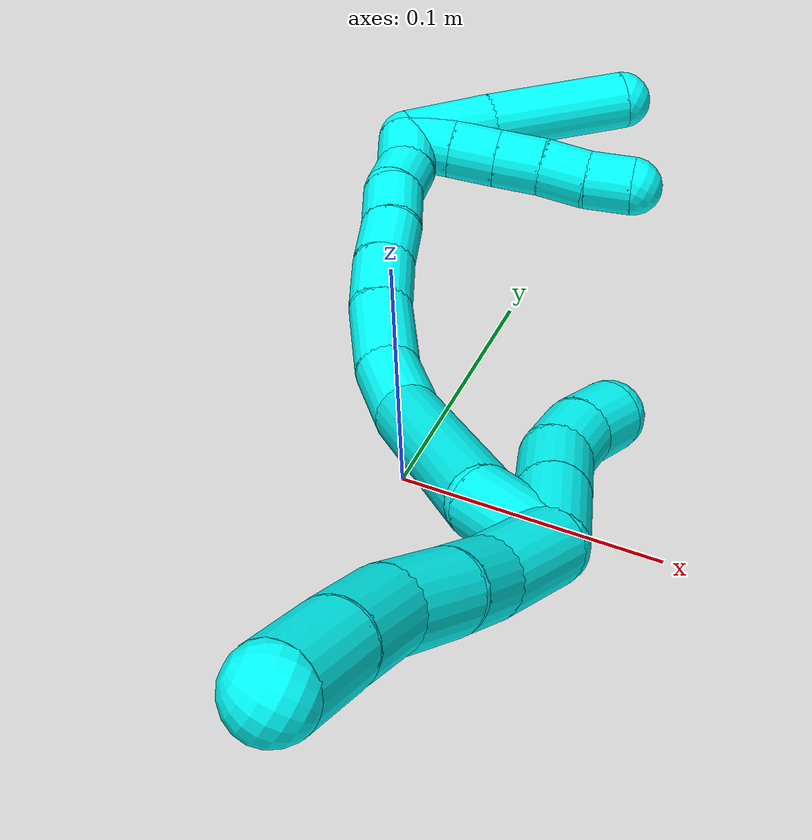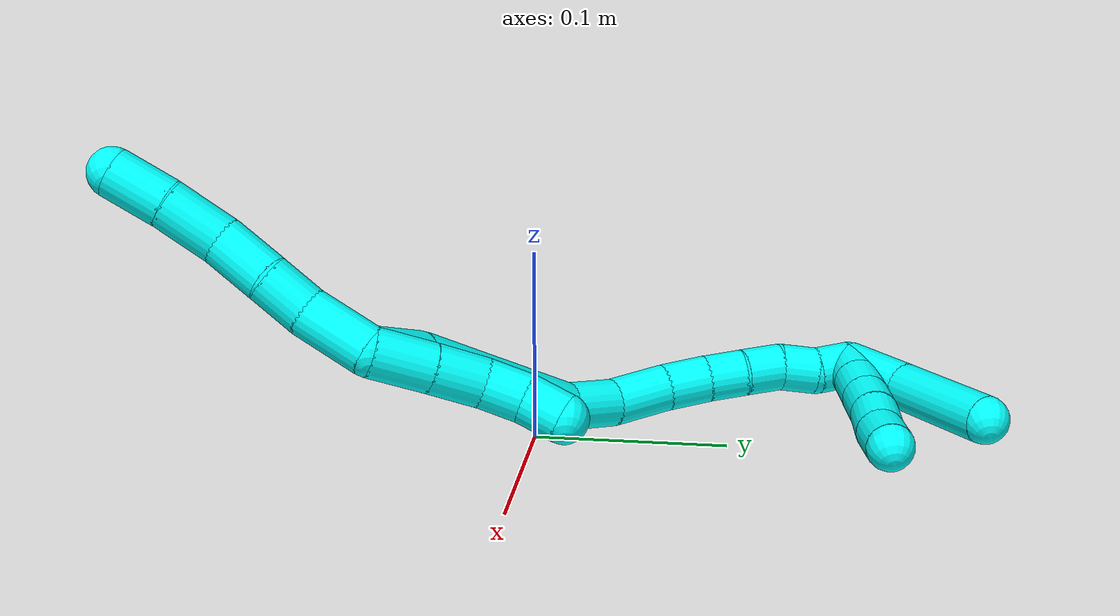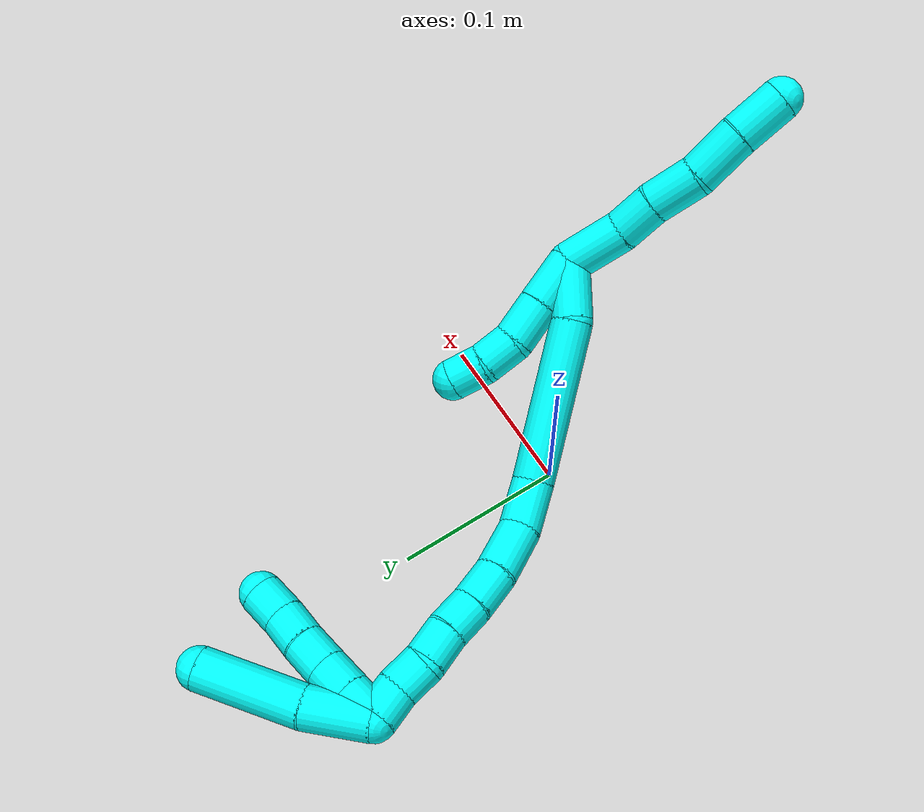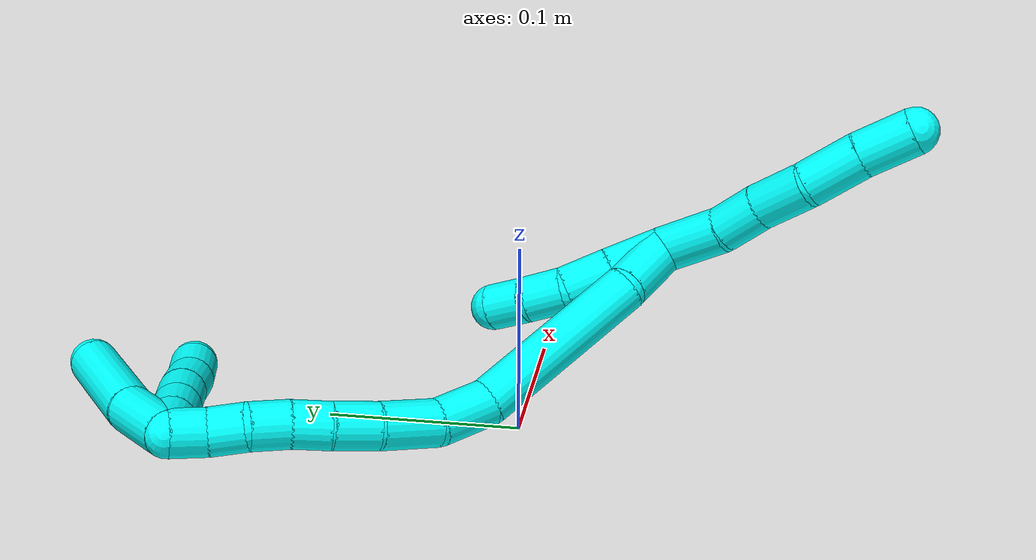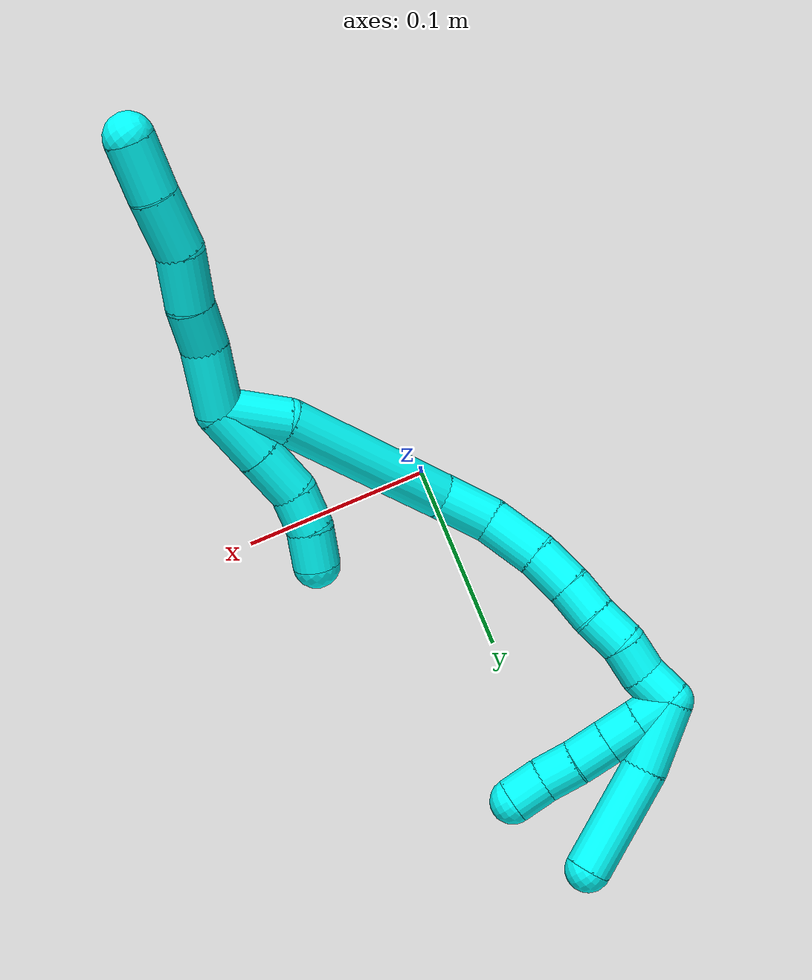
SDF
<sdf version="1.7">
 <world name="default">
  <model name="3">
   <static>0</static>
   <link name="3">
    <collision name="collision-cylinder-e_1_2_8">
     <pose>0.001923 -0.014921 -0.009761 2.15012 0.10744 0.198216</pose>
     <geometry><cylinder><radius>0.0125</radius><length>0.035866</length></cylinder></geometry>
     <surface>
      <friction><ode><mu>1.16</mu><mu2>1.16</mu2><slip1>0</slip1><slip2>0</slip2></ode></friction>
      <contact><ode><kp>1e+06</kp><kd>1</kd><max_vel>0</max_vel><min_depth>0.001</min_depth></ode></contact>
     </surface>
    </collision>
    <visual name="visual-cylinder-e_1_2_8">
     <pose>0.001923 -0.014921 -0.009761 2.15012 0.10744 0.198216</pose>
     <geometry><cylinder><radius>0.0125</radius><length>0.035866</length></cylinder></geometry>
     <material><ambient>0.003922 1 0.996078 1</ambient></material>
    </visual>
    <collision name="collision-cylinder-e_2_8_9">
     <pose>0.002647 -0.040189 -0.025913 2.12405 -0.098249 -0.175841</pose>
     <geometry><cylinder><radius>0.0125</radius><length>0.024443</length></cylinder></geometry>
     <surface>
      <friction><ode><mu>1.16</mu><mu2>1.16</mu2><slip1>0</slip1><slip2>0</slip2></ode></friction>
      <contact><ode><kp>1e+06</kp><kd>1</kd><max_vel>0</max_vel><min_depth>0.001</min_depth></ode></contact>
     </surface>
    </collision>
    <visual name="visual-cylinder-e_2_8_9">
     <pose>0.002647 -0.040189 -0.025913 2.12405 -0.098249 -0.175841</pose>
     <geometry><cylinder><radius>0.0125</radius><length>0.024443</length></cylinder></geometry>
     <material><ambient>0.003922 1 0.996078 1</ambient></material>
    </visual>
    <collision name="collision-cylinder-e_3_9_10">
     <pose>0.001648 -0.062063 -0.041158 2.22583 0.013701 0.027801</pose>
     <geometry><cylinder><radius>0.0125</radius><length>0.029072</length></cylinder></geometry>
     <surface>
      <friction><ode><mu>1.16</mu><mu2>1.16</mu2><slip1>0</slip1><slip2>0</slip2></ode></friction>
      <contact><ode><kp>1e+06</kp><kd>1</kd><max_vel>0</max_vel><min_depth>0.001</min_depth></ode></contact>
     </surface>
    </collision>
    <visual name="visual-cylinder-e_3_9_10">
     <pose>0.001648 -0.062063 -0.041158 2.22583 0.013701 0.027801</pose>
     <geometry><cylinder><radius>0.0125</radius><length>0.029072</length></cylinder></geometry>
     <material><ambient>0.003922 1 0.996078 1</ambient></material>
    </visual>
    <collision name="collision-cylinder-e_4_10_11">
     <pose>0.000699 -0.087755 -0.056499 2.00023 -0.073508 -0.114438</pose>
     <geometry><cylinder><radius>0.0125</radius><length>0.031244</length></cylinder></geometry>
     <surface>
      <friction><ode><mu>1.16</mu><mu2>1.16</mu2><slip1>0</slip1><slip2>0</slip2></ode></friction>
      <contact><ode><kp>1e+06</kp><kd>1</kd><max_vel>0</max_vel><min_depth>0.001</min_depth></ode></contact>
     </surface>
    </collision>
    <visual name="visual-cylinder-e_4_10_11">
     <pose>0.000699 -0.087755 -0.056499 2.00023 -0.073508 -0.114438</pose>
     <geometry><cylinder><radius>0.0125</radius><length>0.031244</length></cylinder></geometry>
     <material><ambient>0.003922 1 0.996078 1</ambient></material>
    </visual>
    <collision name="collision-cylinder-e_5_11_6">
     <pose>-0.000171 -0.115269 -0.069105 2.00062 0.018882 0.029426</pose>
     <geometry><cylinder><radius>0.0125</radius><length>0.029376</length></cylinder></geometry>
     <surface>
      <friction><ode><mu>1.16</mu><mu2>1.16</mu2><slip1>0</slip1><slip2>0</slip2></ode></friction>
      <contact><ode><kp>1e+06</kp><kd>1</kd><max_vel>0</max_vel><min_depth>0.001</min_depth></ode></contact>
     </surface>
    </collision>
    <visual name="visual-cylinder-e_5_11_6">
     <pose>-0.000171 -0.115269 -0.069105 2.00062 0.018882 0.029426</pose>
     <geometry><cylinder><radius>0.0125</radius><length>0.029376</length></cylinder></geometry>
     <material><ambient>0.003922 1 0.996078 1</ambient></material>
    </visual>
    <collision name="collision-cylinder-e_1_2_12">
     <pose>-0.000383 0.015381 0.000922 -1.51091 -0.024827 0.023383</pose>
     <geometry><cylinder><radius>0.0125</radius><length>0.030827</length></cylinder></geometry>
     <surface>
      <friction><ode><mu>1.16</mu><mu2>1.16</mu2><slip1>0</slip1><slip2>0</slip2></ode></friction>
      <contact><ode><kp>1e+06</kp><kd>1</kd><max_vel>0</max_vel><min_depth>0.001</min_depth></ode></contact>
     </surface>
    </collision>
    <visual name="visual-cylinder-e_1_2_12">
     <pose>-0.000383 0.015381 0.000922 -1.51091 -0.024827 0.023383</pose>
     <geometry><cylinder><radius>0.0125</radius><length>0.030827</length></cylinder></geometry>
     <material><ambient>0.003922 1 0.996078 1</ambient></material>
    </visual>
    <collision name="collision-cylinder-e_2_12_13">
     <pose>-0.000859 0.044017 0.00275 -1.5026 -0.007051 0.006586</pose>
     <geometry><cylinder><radius>0.0125</radius><length>0.026572</length></cylinder></geometry>
     <surface>
      <friction><ode><mu>1.16</mu><mu2>1.16</mu2><slip1>0</slip1><slip2>0</slip2></ode></friction>
      <contact><ode><kp>1e+06</kp><kd>1</kd><max_vel>0</max_vel><min_depth>0.001</min_depth></ode></contact>
     </surface>
    </collision>
    <visual name="visual-cylinder-e_2_12_13">
     <pose>-0.000859 0.044017 0.00275 -1.5026 -0.007051 0.006586</pose>
     <geometry><cylinder><radius>0.0125</radius><length>0.026572</length></cylinder></geometry>
     <material><ambient>0.003922 1 0.996078 1</ambient></material>
    </visual>
    <collision name="collision-cylinder-e_3_13_14">
     <pose>-0.002749 0.067327 0.007167 -1.23476 -0.167092 0.118765</pose>
     <geometry><cylinder><radius>0.0125</radius><length>0.021602</length></cylinder></geometry>
     <surface>
      <friction><ode><mu>1.16</mu><mu2>1.16</mu2><slip1>0</slip1><slip2>0</slip2></ode></friction>
      <contact><ode><kp>1e+06</kp><kd>1</kd><max_vel>0</max_vel><min_depth>0.001</min_depth></ode></contact>
     </surface>
    </collision>
    <visual name="visual-cylinder-e_3_13_14">
     <pose>-0.002749 0.067327 0.007167 -1.23476 -0.167092 0.118765</pose>
     <geometry><cylinder><radius>0.0125</radius><length>0.021602</length></cylinder></geometry>
     <material><ambient>0.003922 1 0.996078 1</ambient></material>
    </visual>
    <collision name="collision-cylinder-e_4_14_5">
     <pose>-0.006664 0.086049 0.016213 -1.00262 -0.20319 0.111618</pose>
     <geometry><cylinder><radius>0.0125</radius><length>0.020999</length></cylinder></geometry>
     <surface>
      <friction><ode><mu>1.16</mu><mu2>1.16</mu2><slip1>0</slip1><slip2>0</slip2></ode></friction>
      <contact><ode><kp>1e+06</kp><kd>1</kd><max_vel>0</max_vel><min_depth>0.001</min_depth></ode></contact>
     </surface>
    </collision>
    <visual name="visual-cylinder-e_4_14_5">
     <pose>-0.006664 0.086049 0.016213 -1.00262 -0.20319 0.111618</pose>
     <geometry><cylinder><radius>0.0125</radius><length>0.020999</length></cylinder></geometry>
     <material><ambient>0.003922 1 0.996078 1</ambient></material>
    </visual>
    <collision name="collision-cylinder-e_1_2_15">
     <pose>0.005999 0.014791 -0.008108 -2.07224 0.341707 -0.566984</pose>
     <geometry><cylinder><radius>0.0125</radius><length>0.035804</length></cylinder></geometry>
     <surface>
      <friction><ode><mu>1.16</mu><mu2>1.16</mu2><slip1>0</slip1><slip2>0</slip2></ode></friction>
      <contact><ode><kp>1e+06</kp><kd>1</kd><max_vel>0</max_vel><min_depth>0.001</min_depth></ode></contact>
     </surface>
    </collision>
    <visual name="visual-cylinder-e_1_2_15">
     <pose>0.005999 0.014791 -0.008108 -2.07224 0.341707 -0.566984</pose>
     <geometry><cylinder><radius>0.0125</radius><length>0.035804</length></cylinder></geometry>
     <material><ambient>0.003922 1 0.996078 1</ambient></material>
    </visual>
    <collision name="collision-cylinder-e_2_15_16">
     <pose>0.02593 0.075566 -0.024056 -1.73967 0.290227 -0.342931</pose>
     <geometry><cylinder><radius>0.0125</radius><length>0.097368</length></cylinder></geometry>
     <surface>
      <friction><ode><mu>1.16</mu><mu2>1.16</mu2><slip1>0</slip1><slip2>0</slip2></ode></friction>
      <contact><ode><kp>1e+06</kp><kd>1</kd><max_vel>0</max_vel><min_depth>0.001</min_depth></ode></contact>
     </surface>
    </collision>
    <visual name="visual-cylinder-e_2_15_16">
     <pose>0.02593 0.075566 -0.024056 -1.73967 0.290227 -0.342931</pose>
     <geometry><cylinder><radius>0.0125</radius><length>0.097368</length></cylinder></geometry>
     <material><ambient>0.003922 1 0.996078 1</ambient></material>
    </visual>
    <collision name="collision-cylinder-e_3_16_17">
     <pose>0.039919 0.135563 -0.037253 -1.93593 0.003817 -0.005545</pose>
     <geometry><cylinder><radius>0.0125</radius><length>0.030004</length></cylinder></geometry>
     <surface>
      <friction><ode><mu>1.16</mu><mu2>1.16</mu2><slip1>0</slip1><slip2>0</slip2></ode></friction>
      <contact><ode><kp>1e+06</kp><kd>1</kd><max_vel>0</max_vel><min_depth>0.001</min_depth></ode></contact>
     </surface>
    </collision>
    <visual name="visual-cylinder-e_3_16_17">
     <pose>0.039919 0.135563 -0.037253 -1.93593 0.003817 -0.005545</pose>
     <geometry><cylinder><radius>0.0125</radius><length>0.030004</length></cylinder></geometry>
     <material><ambient>0.003922 1 0.996078 1</ambient></material>
    </visual>
    <collision name="collision-cylinder-e_4_17_18">
     <pose>0.035237 0.163515 -0.047979 -1.9385 -0.307254 0.443751</pose>
     <geometry><cylinder><radius>0.0125</radius><length>0.031341</length></cylinder></geometry>
     <surface>
      <friction><ode><mu>1.16</mu><mu2>1.16</mu2><slip1>0</slip1><slip2>0</slip2></ode></friction>
      <contact><ode><kp>1e+06</kp><kd>1</kd><max_vel>0</max_vel><min_depth>0.001</min_depth></ode></contact>
     </surface>
    </collision>
    <visual name="visual-cylinder-e_4_17_18">
     <pose>0.035237 0.163515 -0.047979 -1.9385 -0.307254 0.443751</pose>
     <geometry><cylinder><radius>0.0125</radius><length>0.031341</length></cylinder></geometry>
     <material><ambient>0.003922 1 0.996078 1</ambient></material>
    </visual>
    <collision name="collision-cylinder-e_5_18_19">
     <pose>0.026015 0.18823 -0.055981 -1.81035 -0.383946 0.485346</pose>
     <geometry><cylinder><radius>0.0125</radius><length>0.02393</length></cylinder></geometry>
     <surface>
      <friction><ode><mu>1.16</mu><mu2>1.16</mu2><slip1>0</slip1><slip2>0</slip2></ode></friction>
      <contact><ode><kp>1e+06</kp><kd>1</kd><max_vel>0</max_vel><min_depth>0.001</min_depth></ode></contact>
     </surface>
    </collision>
    <visual name="visual-cylinder-e_5_18_19">
     <pose>0.026015 0.18823 -0.055981 -1.81035 -0.383946 0.485346</pose>
     <geometry><cylinder><radius>0.0125</radius><length>0.02393</length></cylinder></geometry>
     <material><ambient>0.003922 1 0.996078 1</ambient></material>
    </visual>
    <collision name="collision-cylinder-e_6_19_20">
     <pose>0.017216 0.208213 -0.059947 -1.71473 -0.434579 0.499507</pose>
     <geometry><cylinder><radius>0.0125</radius><length>0.020511</length></cylinder></geometry>
     <surface>
      <friction><ode><mu>1.16</mu><mu2>1.16</mu2><slip1>0</slip1><slip2>0</slip2></ode></friction>
      <contact><ode><kp>1e+06</kp><kd>1</kd><max_vel>0</max_vel><min_depth>0.001</min_depth></ode></contact>
     </surface>
    </collision>
    <visual name="visual-cylinder-e_6_19_20">
     <pose>0.017216 0.208213 -0.059947 -1.71473 -0.434579 0.499507</pose>
     <geometry><cylinder><radius>0.0125</radius><length>0.020511</length></cylinder></geometry>
     <material><ambient>0.003922 1 0.996078 1</ambient></material>
    </visual>
    <collision name="collision-cylinder-e_7_20_21">
     <pose>0.009566 0.227139 -0.063447 -1.79006 -0.322895 0.400853</pose>
     <geometry><cylinder><radius>0.0125</radius><length>0.021002</length></cylinder></geometry>
     <surface>
      <friction><ode><mu>1.16</mu><mu2>1.16</mu2><slip1>0</slip1><slip2>0</slip2></ode></friction>
      <contact><ode><kp>1e+06</kp><kd>1</kd><max_vel>0</max_vel><min_depth>0.001</min_depth></ode></contact>
     </surface>
    </collision>
    <visual name="visual-cylinder-e_7_20_21">
     <pose>0.009566 0.227139 -0.063447 -1.79006 -0.322895 0.400853</pose>
     <geometry><cylinder><radius>0.0125</radius><length>0.021002</length></cylinder></geometry>
     <material><ambient>0.003922 1 0.996078 1</ambient></material>
    </visual>
    <collision name="collision-cylinder-e_8_21_22">
     <pose>0.003546 0.246462 -0.064738 -1.47983 -0.271857 0.248442</pose>
     <geometry><cylinder><radius>0.0125</radius><length>0.020022</length></cylinder></geometry>
     <surface>
      <friction><ode><mu>1.16</mu><mu2>1.16</mu2><slip1>0</slip1><slip2>0</slip2></ode></friction>
      <contact><ode><kp>1e+06</kp><kd>1</kd><max_vel>0</max_vel><min_depth>0.001</min_depth></ode></contact>
     </surface>
    </collision>
    <visual name="visual-cylinder-e_8_21_22">
     <pose>0.003546 0.246462 -0.064738 -1.47983 -0.271857 0.248442</pose>
     <geometry><cylinder><radius>0.0125</radius><length>0.020022</length></cylinder></geometry>
     <material><ambient>0.003922 1 0.996078 1</ambient></material>
    </visual>
    <collision name="collision-cylinder-e_9_22_1">
     <pose>-0.002574 0.26522 -0.066006 -1.80085 -0.349933 0.438741</pose>
     <geometry><cylinder><radius>0.0125</radius><length>0.020018</length></cylinder></geometry>
     <surface>
      <friction><ode><mu>1.16</mu><mu2>1.16</mu2><slip1>0</slip1><slip2>0</slip2></ode></friction>
      <contact><ode><kp>1e+06</kp><kd>1</kd><max_vel>0</max_vel><min_depth>0.001</min_depth></ode></contact>
     </surface>
    </collision>
    <visual name="visual-cylinder-e_9_22_1">
     <pose>-0.002574 0.26522 -0.066006 -1.80085 -0.349933 0.438741</pose>
     <geometry><cylinder><radius>0.0125</radius><length>0.020018</length></cylinder></geometry>
     <material><ambient>0.003922 1 0.996078 1</ambient></material>
    </visual>
    <collision name="collision-cylinder-e_1_1_23">
     <pose>-0.016599 0.282089 -0.053819 -0.493843 -0.577024 0.149344</pose>
     <geometry><cylinder><radius>0.0125</radius><length>0.038838</length></cylinder></geometry>
     <surface>
      <friction><ode><mu>1.16</mu><mu2>1.16</mu2><slip1>0</slip1><slip2>0</slip2></ode></friction>
      <contact><ode><kp>1e+06</kp><kd>1</kd><max_vel>0</max_vel><min_depth>0.001</min_depth></ode></contact>
     </surface>
    </collision>
    <visual name="visual-cylinder-e_1_1_23">
     <pose>-0.016599 0.282089 -0.053819 -0.493843 -0.577024 0.149344</pose>
     <geometry><cylinder><radius>0.0125</radius><length>0.038838</length></cylinder></geometry>
     <material><ambient>0.003922 1 0.996078 1</ambient></material>
    </visual>
    <collision name="collision-cylinder-e_2_23_4">
     <pose>-0.045252 0.296965 -0.015872 -0.29444 -0.631716 0.096848</pose>
     <geometry><cylinder><radius>0.0125</radius><length>0.061162</length></cylinder></geometry>
     <surface>
      <friction><ode><mu>1.16</mu><mu2>1.16</mu2><slip1>0</slip1><slip2>0</slip2></ode></friction>
      <contact><ode><kp>1e+06</kp><kd>1</kd><max_vel>0</max_vel><min_depth>0.001</min_depth></ode></contact>
     </surface>
    </collision>
    <visual name="visual-cylinder-e_2_23_4">
     <pose>-0.045252 0.296965 -0.015872 -0.29444 -0.631716 0.096848</pose>
     <geometry><cylinder><radius>0.0125</radius><length>0.061162</length></cylinder></geometry>
     <material><ambient>0.003922 1 0.996078 1</ambient></material>
    </visual>
    <collision name="collision-cylinder-e_1_1_24">
     <pose>-0.009626 0.272917 -0.058943 0.157021 -0.370526 -0.029486</pose>
     <geometry><cylinder><radius>0.0125</radius><length>0.02</length></cylinder></geometry>
     <surface>
      <friction><ode><mu>1.16</mu><mu2>1.16</mu2><slip1>0</slip1><slip2>0</slip2></ode></friction>
      <contact><ode><kp>1e+06</kp><kd>1</kd><max_vel>0</max_vel><min_depth>0.001</min_depth></ode></contact>
     </surface>
    </collision>
    <visual name="visual-cylinder-e_1_1_24">
     <pose>-0.009626 0.272917 -0.058943 0.157021 -0.370526 -0.029486</pose>
     <geometry><cylinder><radius>0.0125</radius><length>0.02</length></cylinder></geometry>
     <material><ambient>0.003922 1 0.996078 1</ambient></material>
    </visual>
    <collision name="collision-cylinder-e_2_24_25">
     <pose>-0.016952 0.269845 -0.040589 0.174597 -0.379546 -0.03362</pose>
     <geometry><cylinder><radius>0.0125</radius><length>0.02</length></cylinder></geometry>
     <surface>
      <friction><ode><mu>1.16</mu><mu2>1.16</mu2><slip1>0</slip1><slip2>0</slip2></ode></friction>
      <contact><ode><kp>1e+06</kp><kd>1</kd><max_vel>0</max_vel><min_depth>0.001</min_depth></ode></contact>
     </surface>
    </collision>
    <visual name="visual-cylinder-e_2_24_25">
     <pose>-0.016952 0.269845 -0.040589 0.174597 -0.379546 -0.03362</pose>
     <geometry><cylinder><radius>0.0125</radius><length>0.02</length></cylinder></geometry>
     <material><ambient>0.003922 1 0.996078 1</ambient></material>
    </visual>
    <collision name="collision-cylinder-e_3_25_26">
     <pose>-0.024548 0.266482 -0.022398 0.19113 -0.399601 -0.038818</pose>
     <geometry><cylinder><radius>0.0125</radius><length>0.02</length></cylinder></geometry>
     <surface>
      <friction><ode><mu>1.16</mu><mu2>1.16</mu2><slip1>0</slip1><slip2>0</slip2></ode></friction>
      <contact><ode><kp>1e+06</kp><kd>1</kd><max_vel>0</max_vel><min_depth>0.001</min_depth></ode></contact>
     </surface>
    </collision>
    <visual name="visual-cylinder-e_3_25_26">
     <pose>-0.024548 0.266482 -0.022398 0.19113 -0.399601 -0.038818</pose>
     <geometry><cylinder><radius>0.0125</radius><length>0.02</length></cylinder></geometry>
     <material><ambient>0.003922 1 0.996078 1</ambient></material>
    </visual>
    <collision name="collision-cylinder-e_4_26_27">
     <pose>-0.031592 0.262521 -0.004125 0.235197 -0.320874 -0.038233</pose>
     <geometry><cylinder><radius>0.0125</radius><length>0.02</length></cylinder></geometry>
     <surface>
      <friction><ode><mu>1.16</mu><mu2>1.16</mu2><slip1>0</slip1><slip2>0</slip2></ode></friction>
      <contact><ode><kp>1e+06</kp><kd>1</kd><max_vel>0</max_vel><min_depth>0.001</min_depth></ode></contact>
     </surface>
    </collision>
    <visual name="visual-cylinder-e_4_26_27">
     <pose>-0.031592 0.262521 -0.004125 0.235197 -0.320874 -0.038233</pose>
     <geometry><cylinder><radius>0.0125</radius><length>0.02</length></cylinder></geometry>
     <material><ambient>0.003922 1 0.996078 1</ambient></material>
    </visual>
    <collision name="collision-cylinder-e_5_27_3">
     <pose>-0.039157 0.258508 0.013895 0.202118 -0.456851 -0.047141</pose>
     <geometry><cylinder><radius>0.0125</radius><length>0.02</length></cylinder></geometry>
     <surface>
      <friction><ode><mu>1.16</mu><mu2>1.16</mu2><slip1>0</slip1><slip2>0</slip2></ode></friction>
      <contact><ode><kp>1e+06</kp><kd>1</kd><max_vel>0</max_vel><min_depth>0.001</min_depth></ode></contact>
     </surface>
    </collision>
    <visual name="visual-cylinder-e_5_27_3">
     <pose>-0.039157 0.258508 0.013895 0.202118 -0.456851 -0.047141</pose>
     <geometry><cylinder><radius>0.0125</radius><length>0.02</length></cylinder></geometry>
     <material><ambient>0.003922 1 0.996078 1</ambient></material>
    </visual>
    <collision name="collision-sphere-3">
     <pose>-0.043569 0.256706 0.022687 0 -0 0</pose>
     <geometry><sphere><radius>0.0125</radius></sphere></geometry>
     <surface>
      <friction><ode><mu>1.16</mu><mu2>1.16</mu2><slip1>0</slip1><slip2>0</slip2></ode></friction>
      <contact><ode><kp>1e+06</kp><kd>1</kd><max_vel>0</max_vel><min_depth>0.001</min_depth></ode></contact>
     </surface>
    </collision>
    <visual name="visual-sphere-3">
     <pose>-0.043569 0.256706 0.022687 0 -0 0</pose>
     <geometry><sphere><radius>0.0125</radius></sphere></geometry>
     <material><ambient>0.003922 1 0.996078 1</ambient></material>
    </visual>
    <collision name="collision-sphere-27">
     <pose>-0.034746 0.260309 0.005104 0 -0 0</pose>
     <geometry><sphere><radius>0.0125</radius></sphere></geometry>
     <surface>
      <friction><ode><mu>1.16</mu><mu2>1.16</mu2><slip1>0</slip1><slip2>0</slip2></ode></friction>
      <contact><ode><kp>1e+06</kp><kd>1</kd><max_vel>0</max_vel><min_depth>0.001</min_depth></ode></contact>
     </surface>
    </collision>
    <visual name="visual-sphere-27">
     <pose>-0.034746 0.260309 0.005104 0 -0 0</pose>
     <geometry><sphere><radius>0.0125</radius></sphere></geometry>
     <material><ambient>0.003922 1 0.996078 1</ambient></material>
    </visual>
    <collision name="collision-sphere-26">
     <pose>-0.028438 0.264732 -0.013353 0 -0 0</pose>
     <geometry><sphere><radius>0.0125</radius></sphere></geometry>
     <surface>
      <friction><ode><mu>1.16</mu><mu2>1.16</mu2><slip1>0</slip1><slip2>0</slip2></ode></friction>
      <contact><ode><kp>1e+06</kp><kd>1</kd><max_vel>0</max_vel><min_depth>0.001</min_depth></ode></contact>
     </surface>
    </collision>
    <visual name="visual-sphere-26">
     <pose>-0.028438 0.264732 -0.013353 0 -0 0</pose>
     <geometry><sphere><radius>0.0125</radius></sphere></geometry>
     <material><ambient>0.003922 1 0.996078 1</ambient></material>
    </visual>
    <collision name="collision-sphere-25">
     <pose>-0.020657 0.268232 -0.031442 0 -0 0</pose>
     <geometry><sphere><radius>0.0125</radius></sphere></geometry>
     <surface>
      <friction><ode><mu>1.16</mu><mu2>1.16</mu2><slip1>0</slip1><slip2>0</slip2></ode></friction>
      <contact><ode><kp>1e+06</kp><kd>1</kd><max_vel>0</max_vel><min_depth>0.001</min_depth></ode></contact>
     </surface>
    </collision>
    <visual name="visual-sphere-25">
     <pose>-0.020657 0.268232 -0.031442 0 -0 0</pose>
     <geometry><sphere><radius>0.0125</radius></sphere></geometry>
     <material><ambient>0.003922 1 0.996078 1</ambient></material>
    </visual>
    <collision name="collision-sphere-24">
     <pose>-0.013247 0.271459 -0.049736 0 -0 0</pose>
     <geometry><sphere><radius>0.0125</radius></sphere></geometry>
     <surface>
      <friction><ode><mu>1.16</mu><mu2>1.16</mu2><slip1>0</slip1><slip2>0</slip2></ode></friction>
      <contact><ode><kp>1e+06</kp><kd>1</kd><max_vel>0</max_vel><min_depth>0.001</min_depth></ode></contact>
     </surface>
    </collision>
    <visual name="visual-sphere-24">
     <pose>-0.013247 0.271459 -0.049736 0 -0 0</pose>
     <geometry><sphere><radius>0.0125</radius></sphere></geometry>
     <material><ambient>0.003922 1 0.996078 1</ambient></material>
    </visual>
    <collision name="collision-sphere-4">
     <pose>-0.063311 0.304127 0.007746 0 -0 0</pose>
     <geometry><sphere><radius>0.0125</radius></sphere></geometry>
     <surface>
      <friction><ode><mu>1.16</mu><mu2>1.16</mu2><slip1>0</slip1><slip2>0</slip2></ode></friction>
      <contact><ode><kp>1e+06</kp><kd>1</kd><max_vel>0</max_vel><min_depth>0.001</min_depth></ode></contact>
     </surface>
    </collision>
    <visual name="visual-sphere-4">
     <pose>-0.063311 0.304127 0.007746 0 -0 0</pose>
     <geometry><sphere><radius>0.0125</radius></sphere></geometry>
     <material><ambient>0.003922 1 0.996078 1</ambient></material>
    </visual>
    <collision name="collision-sphere-23">
     <pose>-0.027193 0.289803 -0.039489 0 -0 0</pose>
     <geometry><sphere><radius>0.0125</radius></sphere></geometry>
     <surface>
      <friction><ode><mu>1.16</mu><mu2>1.16</mu2><slip1>0</slip1><slip2>0</slip2></ode></friction>
      <contact><ode><kp>1e+06</kp><kd>1</kd><max_vel>0</max_vel><min_depth>0.001</min_depth></ode></contact>
     </surface>
    </collision>
    <visual name="visual-sphere-23">
     <pose>-0.027193 0.289803 -0.039489 0 -0 0</pose>
     <geometry><sphere><radius>0.0125</radius></sphere></geometry>
     <material><ambient>0.003922 1 0.996078 1</ambient></material>
    </visual>
    <collision name="collision-sphere-1">
     <pose>-0.006005 0.274374 -0.06815 0 -0 0</pose>
     <geometry><sphere><radius>0.0125</radius></sphere></geometry>
     <surface>
      <friction><ode><mu>1.16</mu><mu2>1.16</mu2><slip1>0</slip1><slip2>0</slip2></ode></friction>
      <contact><ode><kp>1e+06</kp><kd>1</kd><max_vel>0</max_vel><min_depth>0.001</min_depth></ode></contact>
     </surface>
    </collision>
    <visual name="visual-sphere-1">
     <pose>-0.006005 0.274374 -0.06815 0 -0 0</pose>
     <geometry><sphere><radius>0.0125</radius></sphere></geometry>
     <material><ambient>0.003922 1 0.996078 1</ambient></material>
    </visual>
    <collision name="collision-sphere-22">
     <pose>0.000858 0.256065 -0.063862 0 -0 0</pose>
     <geometry><sphere><radius>0.0125</radius></sphere></geometry>
     <surface>
      <friction><ode><mu>1.16</mu><mu2>1.16</mu2><slip1>0</slip1><slip2>0</slip2></ode></friction>
      <contact><ode><kp>1e+06</kp><kd>1</kd><max_vel>0</max_vel><min_depth>0.001</min_depth></ode></contact>
     </surface>
    </collision>
    <visual name="visual-sphere-22">
     <pose>0.000858 0.256065 -0.063862 0 -0 0</pose>
     <geometry><sphere><radius>0.0125</radius></sphere></geometry>
     <material><ambient>0.003922 1 0.996078 1</ambient></material>
    </visual>
    <collision name="collision-sphere-21">
     <pose>0.006234 0.236858 -0.065613 0 -0 0</pose>
     <geometry><sphere><radius>0.0125</radius></sphere></geometry>
     <surface>
      <friction><ode><mu>1.16</mu><mu2>1.16</mu2><slip1>0</slip1><slip2>0</slip2></ode></friction>
      <contact><ode><kp>1e+06</kp><kd>1</kd><max_vel>0</max_vel><min_depth>0.001</min_depth></ode></contact>
     </surface>
    </collision>
    <visual name="visual-sphere-21">
     <pose>0.006234 0.236858 -0.065613 0 -0 0</pose>
     <geometry><sphere><radius>0.0125</radius></sphere></geometry>
     <material><ambient>0.003922 1 0.996078 1</ambient></material>
    </visual>
    <collision name="collision-sphere-6">
     <pose>0.000107 -0.128618 -0.075225 0 -0 0</pose>
     <geometry><sphere><radius>0.0125</radius></sphere></geometry>
     <surface>
      <friction><ode><mu>1.16</mu><mu2>1.16</mu2><slip1>0</slip1><slip2>0</slip2></ode></friction>
      <contact><ode><kp>1e+06</kp><kd>1</kd><max_vel>0</max_vel><min_depth>0.001</min_depth></ode></contact>
     </surface>
    </collision>
    <visual name="visual-sphere-6">
     <pose>0.000107 -0.128618 -0.075225 0 -0 0</pose>
     <geometry><sphere><radius>0.0125</radius></sphere></geometry>
     <material><ambient>0.003922 1 0.996078 1</ambient></material>
    </visual>
    <collision name="collision-sphere-11">
     <pose>-0.000448 -0.10192 -0.062986 0 -0 0</pose>
     <geometry><sphere><radius>0.0125</radius></sphere></geometry>
     <surface>
      <friction><ode><mu>1.16</mu><mu2>1.16</mu2><slip1>0</slip1><slip2>0</slip2></ode></friction>
      <contact><ode><kp>1e+06</kp><kd>1</kd><max_vel>0</max_vel><min_depth>0.001</min_depth></ode></contact>
     </surface>
    </collision>
    <visual name="visual-sphere-11">
     <pose>-0.000448 -0.10192 -0.062986 0 -0 0</pose>
     <geometry><sphere><radius>0.0125</radius></sphere></geometry>
     <material><ambient>0.003922 1 0.996078 1</ambient></material>
    </visual>
    <collision name="collision-sphere-10">
     <pose>0.001847 -0.073589 -0.050012 0 -0 0</pose>
     <geometry><sphere><radius>0.0125</radius></sphere></geometry>
     <surface>
      <friction><ode><mu>1.16</mu><mu2>1.16</mu2><slip1>0</slip1><slip2>0</slip2></ode></friction>
      <contact><ode><kp>1e+06</kp><kd>1</kd><max_vel>0</max_vel><min_depth>0.001</min_depth></ode></contact>
     </surface>
    </collision>
    <visual name="visual-sphere-10">
     <pose>0.001847 -0.073589 -0.050012 0 -0 0</pose>
     <geometry><sphere><radius>0.0125</radius></sphere></geometry>
     <material><ambient>0.003922 1 0.996078 1</ambient></material>
    </visual>
    <collision name="collision-sphere-9">
     <pose>0.001448 -0.050537 -0.032304 0 -0 0</pose>
     <geometry><sphere><radius>0.0125</radius></sphere></geometry>
     <surface>
      <friction><ode><mu>1.16</mu><mu2>1.16</mu2><slip1>0</slip1><slip2>0</slip2></ode></friction>
      <contact><ode><kp>1e+06</kp><kd>1</kd><max_vel>0</max_vel><min_depth>0.001</min_depth></ode></contact>
     </surface>
    </collision>
    <visual name="visual-sphere-9">
     <pose>0.001448 -0.050537 -0.032304 0 -0 0</pose>
     <geometry><sphere><radius>0.0125</radius></sphere></geometry>
     <material><ambient>0.003922 1 0.996078 1</ambient></material>
    </visual>
    <collision name="collision-sphere-2">
     <geometry><sphere><radius>0.0125</radius></sphere></geometry>
     <surface>
      <friction><ode><mu>1.16</mu><mu2>1.16</mu2><slip1>0</slip1><slip2>0</slip2></ode></friction>
      <contact><ode><kp>1e+06</kp><kd>1</kd><max_vel>0</max_vel><min_depth>0.001</min_depth></ode></contact>
     </surface>
    </collision>
    <visual name="visual-sphere-2">
     <geometry><sphere><radius>0.0125</radius></sphere></geometry>
     <material><ambient>0.003922 1 0.996078 1</ambient></material>
    </visual>
    <collision name="collision-sphere-19">
     <pose>0.021534 0.199007 -0.058613 0 -0 0</pose>
     <geometry><sphere><radius>0.0125</radius></sphere></geometry>
     <surface>
      <friction><ode><mu>1.16</mu><mu2>1.16</mu2><slip1>0</slip1><slip2>0</slip2></ode></friction>
      <contact><ode><kp>1e+06</kp><kd>1</kd><max_vel>0</max_vel><min_depth>0.001</min_depth></ode></contact>
     </surface>
    </collision>
    <visual name="visual-sphere-19">
     <pose>0.021534 0.199007 -0.058613 0 -0 0</pose>
     <geometry><sphere><radius>0.0125</radius></sphere></geometry>
     <material><ambient>0.003922 1 0.996078 1</ambient></material>
    </visual>
    <collision name="collision-sphere-8">
     <pose>0.003846 -0.029841 -0.019522 0 -0 0</pose>
     <geometry><sphere><radius>0.0125</radius></sphere></geometry>
     <surface>
      <friction><ode><mu>1.16</mu><mu2>1.16</mu2><slip1>0</slip1><slip2>0</slip2></ode></friction>
      <contact><ode><kp>1e+06</kp><kd>1</kd><max_vel>0</max_vel><min_depth>0.001</min_depth></ode></contact>
     </surface>
    </collision>
    <visual name="visual-sphere-8">
     <pose>0.003846 -0.029841 -0.019522 0 -0 0</pose>
     <geometry><sphere><radius>0.0125</radius></sphere></geometry>
     <material><ambient>0.003922 1 0.996078 1</ambient></material>
    </visual>
    <collision name="collision-sphere-12">
     <pose>-0.000765 0.030762 0.001845 0 -0 0</pose>
     <geometry><sphere><radius>0.0125</radius></sphere></geometry>
     <surface>
      <friction><ode><mu>1.16</mu><mu2>1.16</mu2><slip1>0</slip1><slip2>0</slip2></ode></friction>
      <contact><ode><kp>1e+06</kp><kd>1</kd><max_vel>0</max_vel><min_depth>0.001</min_depth></ode></contact>
     </surface>
    </collision>
    <visual name="visual-sphere-12">
     <pose>-0.000765 0.030762 0.001845 0 -0 0</pose>
     <geometry><sphere><radius>0.0125</radius></sphere></geometry>
     <material><ambient>0.003922 1 0.996078 1</ambient></material>
    </visual>
    <collision name="collision-sphere-13">
     <pose>-0.000953 0.057272 0.003655 0 -0 0</pose>
     <geometry><sphere><radius>0.0125</radius></sphere></geometry>
     <surface>
      <friction><ode><mu>1.16</mu><mu2>1.16</mu2><slip1>0</slip1><slip2>0</slip2></ode></friction>
      <contact><ode><kp>1e+06</kp><kd>1</kd><max_vel>0</max_vel><min_depth>0.001</min_depth></ode></contact>
     </surface>
    </collision>
    <visual name="visual-sphere-13">
     <pose>-0.000953 0.057272 0.003655 0 -0 0</pose>
     <geometry><sphere><radius>0.0125</radius></sphere></geometry>
     <material><ambient>0.003922 1 0.996078 1</ambient></material>
    </visual>
    <collision name="collision-sphere-14">
     <pose>-0.004545 0.077381 0.010679 0 -0 0</pose>
     <geometry><sphere><radius>0.0125</radius></sphere></geometry>
     <surface>
      <friction><ode><mu>1.16</mu><mu2>1.16</mu2><slip1>0</slip1><slip2>0</slip2></ode></friction>
      <contact><ode><kp>1e+06</kp><kd>1</kd><max_vel>0</max_vel><min_depth>0.001</min_depth></ode></contact>
     </surface>
    </collision>
    <visual name="visual-sphere-14">
     <pose>-0.004545 0.077381 0.010679 0 -0 0</pose>
     <geometry><sphere><radius>0.0125</radius></sphere></geometry>
     <material><ambient>0.003922 1 0.996078 1</ambient></material>
    </visual>
    <collision name="collision-sphere-5">
     <pose>-0.008783 0.094717 0.021746 0 -0 0</pose>
     <geometry><sphere><radius>0.0125</radius></sphere></geometry>
     <surface>
      <friction><ode><mu>1.16</mu><mu2>1.16</mu2><slip1>0</slip1><slip2>0</slip2></ode></friction>
      <contact><ode><kp>1e+06</kp><kd>1</kd><max_vel>0</max_vel><min_depth>0.001</min_depth></ode></contact>
     </surface>
    </collision>
    <visual name="visual-sphere-5">
     <pose>-0.008783 0.094717 0.021746 0 -0 0</pose>
     <geometry><sphere><radius>0.0125</radius></sphere></geometry>
     <material><ambient>0.003922 1 0.996078 1</ambient></material>
    </visual>
    <collision name="collision-sphere-15">
     <pose>0.011998 0.029581 -0.016216 0 -0 0</pose>
     <geometry><sphere><radius>0.0125</radius></sphere></geometry>
     <surface>
      <friction><ode><mu>1.16</mu><mu2>1.16</mu2><slip1>0</slip1><slip2>0</slip2></ode></friction>
      <contact><ode><kp>1e+06</kp><kd>1</kd><max_vel>0</max_vel><min_depth>0.001</min_depth></ode></contact>
     </surface>
    </collision>
    <visual name="visual-sphere-15">
     <pose>0.011998 0.029581 -0.016216 0 -0 0</pose>
     <geometry><sphere><radius>0.0125</radius></sphere></geometry>
     <material><ambient>0.003922 1 0.996078 1</ambient></material>
    </visual>
    <collision name="collision-sphere-16">
     <pose>0.039862 0.12155 -0.031896 0 -0 0</pose>
     <geometry><sphere><radius>0.0125</radius></sphere></geometry>
     <surface>
      <friction><ode><mu>1.16</mu><mu2>1.16</mu2><slip1>0</slip1><slip2>0</slip2></ode></friction>
      <contact><ode><kp>1e+06</kp><kd>1</kd><max_vel>0</max_vel><min_depth>0.001</min_depth></ode></contact>
     </surface>
    </collision>
    <visual name="visual-sphere-16">
     <pose>0.039862 0.12155 -0.031896 0 -0 0</pose>
     <geometry><sphere><radius>0.0125</radius></sphere></geometry>
     <material><ambient>0.003922 1 0.996078 1</ambient></material>
    </visual>
    <collision name="collision-sphere-17">
     <pose>0.039976 0.149576 -0.04261 0 -0 0</pose>
     <geometry><sphere><radius>0.0125</radius></sphere></geometry>
     <surface>
      <friction><ode><mu>1.16</mu><mu2>1.16</mu2><slip1>0</slip1><slip2>0</slip2></ode></friction>
      <contact><ode><kp>1e+06</kp><kd>1</kd><max_vel>0</max_vel><min_depth>0.001</min_depth></ode></contact>
     </surface>
    </collision>
    <visual name="visual-sphere-17">
     <pose>0.039976 0.149576 -0.04261 0 -0 0</pose>
     <geometry><sphere><radius>0.0125</radius></sphere></geometry>
     <material><ambient>0.003922 1 0.996078 1</ambient></material>
    </visual>
    <collision name="collision-sphere-18">
     <pose>0.030497 0.177453 -0.053349 0 -0 0</pose>
     <geometry><sphere><radius>0.0125</radius></sphere></geometry>
     <surface>
      <friction><ode><mu>1.16</mu><mu2>1.16</mu2><slip1>0</slip1><slip2>0</slip2></ode></friction>
      <contact><ode><kp>1e+06</kp><kd>1</kd><max_vel>0</max_vel><min_depth>0.001</min_depth></ode></contact>
     </surface>
    </collision>
    <visual name="visual-sphere-18">
     <pose>0.030497 0.177453 -0.053349 0 -0 0</pose>
     <geometry><sphere><radius>0.0125</radius></sphere></geometry>
     <material><ambient>0.003922 1 0.996078 1</ambient></material>
    </visual>
    <collision name="collision-sphere-20">
     <pose>0.012898 0.217419 -0.061281 0 -0 0</pose>
     <geometry><sphere><radius>0.0125</radius></sphere></geometry>
     <surface>
      <friction><ode><mu>1.16</mu><mu2>1.16</mu2><slip1>0</slip1><slip2>0</slip2></ode></friction>
      <contact><ode><kp>1e+06</kp><kd>1</kd><max_vel>0</max_vel><min_depth>0.001</min_depth></ode></contact>
     </surface>
    </collision>
    <visual name="visual-sphere-20">
     <pose>0.012898 0.217419 -0.061281 0 -0 0</pose>
     <geometry><sphere><radius>0.0125</radius></sphere></geometry>
     <material><ambient>0.003922 1 0.996078 1</ambient></material>
    </visual>
    <inertial>
     <pose>0.00047 0.122731 -0.029941 0 -0 0</pose>
     <mass>0.75</mass>
     <inertia>
      <ixx>0.000117</ixx>
      <ixy>0</ixy>
      <ixz>0</ixz>
      <iyy>1.7e-05</iyy>
      <iyz>0</iyz>
      <izz>-9.3e-05</izz>
     </inertia>
    </inertial>
   </link>
   <pose>0.082753 -0.066215 0.071857 -2.56357 0.938023 -2.25349</pose>
  </model>
 </world>
</sdf>
